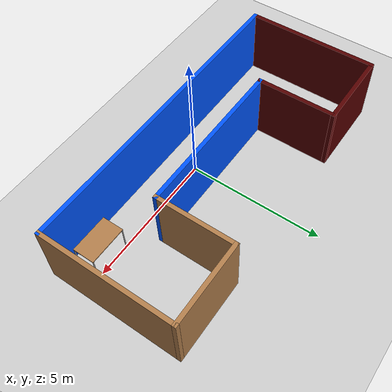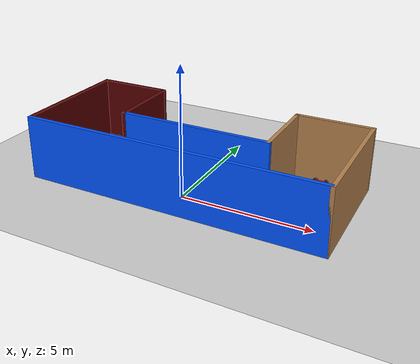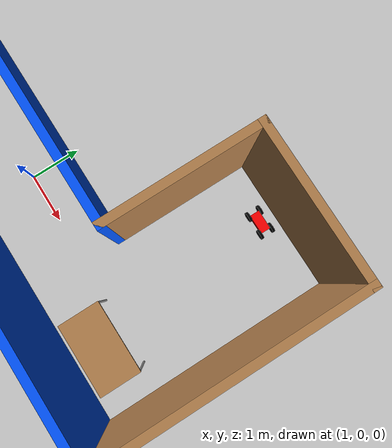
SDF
<sdf version="1.6">
 <world name="default">
  <light name="sun" type="directional">
   <pose>0 0 10 0 -0 0</pose>
   <diffuse>0.8 0.8 0.8 1</diffuse>
   <specular>0.1 0.1 0.1 1</specular>
   <attenuation>
    <range>1000</range>
    <constant>0.9</constant>
    <linear>0.01</linear>
    <quadratic>0.001</quadratic>
   </attenuation>
   <direction>-0.5 0.5 -1</direction>
  </light>
  <model name="ground_plane">
   <static>1</static>
   <link name="link">
    <collision name="collision">
     <geometry><plane><normal>0 0 1</normal><size>100 100</size></plane></geometry>
     <surface><friction><ode><mu>100</mu><mu2>50</mu2></ode></friction></surface>
    </collision>
    <visual name="visual">
     <cast_shadows>0</cast_shadows>
     <geometry><plane><normal>0 0 1</normal><size>100 100</size></plane></geometry>
     <material>
      <script><uri>file://media/materials/scripts/gazebo.material</uri><name>Gazebo/Grey</name></script>
     </material>
    </visual>
   </link>
  </model>
  <gravity>0 0 -9.8</gravity>
  <magnetic_field>6e-06 2.3e-05 -4.2e-05</magnetic_field>
  <atmosphere type="adiabatic"/>
  <physics name="default_physics" default="0" type="ode">
   <max_step_size>0.001</max_step_size>
   <real_time_factor>1</real_time_factor>
   <real_time_update_rate>1000</real_time_update_rate>
  </physics>
  <scene><ambient>0.4 0.4 0.4 1</ambient><background>0.7 0.7 0.7 1</background><shadows>1</shadows></scene>
  <spherical_coordinates>
   <surface_model>EARTH_WGS84</surface_model>
   <latitude_deg>0</latitude_deg>
   <longitude_deg>0</longitude_deg>
   <elevation>0</elevation>
   <heading_deg>0</heading_deg>
  </spherical_coordinates>
  <model name="my_mapping_env">
   <pose>0.02254 1.21778 0 0 -0 0</pose>
   <link name="Wall_15">
    <collision name="Wall_15_Collision">
     <geometry><box><size>5 0.15 2.5</size></box></geometry>
     <pose>0 0 1.25 0 -0 0</pose>
    </collision>
    <visual name="Wall_15_Visual">
     <pose>0 0 1.25 0 -0 0</pose>
     <geometry><box><size>5 0.15 2.5</size></box></geometry>
     <material>
      <script><uri>file://media/materials/scripts/gazebo.material</uri><name>Gazebo/Wood</name></script>
      <ambient>1 1 1 1</ambient>
     </material>
    </visual>
    <pose>5.775 0 0 0 -0 1.5708</pose>
   </link>
   <link name="Wall_16">
    <collision name="Wall_16_Collision">
     <geometry><box><size>3 0.15 2.5</size></box></geometry>
     <pose>0 0 1.25 0 -0 0</pose>
    </collision>
    <visual name="Wall_16_Visual">
     <pose>0 0 1.25 0 -0 0</pose>
     <geometry><box><size>3 0.15 2.5</size></box></geometry>
     <material>
      <script><uri>file://media/materials/scripts/gazebo.material</uri><name>Gazebo/Wood</name></script>
      <ambient>1 1 1 1</ambient>
     </material>
    </visual>
    <pose>4.35 2.425 0 0 -0 3.14159</pose>
   </link>
   <link name="Wall_17">
    <collision name="Wall_17_Collision">
     <geometry><box><size>3 0.15 2.5</size></box></geometry>
     <pose>0 0 1.25 0 -0 0</pose>
    </collision>
    <visual name="Wall_17_Visual">
     <pose>0 0 1.25 0 -0 0</pose>
     <geometry><box><size>3 0.15 2.5</size></box></geometry>
     <material>
      <script><uri>file://media/materials/scripts/gazebo.material</uri><name>Gazebo/Wood</name></script>
      <ambient>1 1 1 1</ambient>
     </material>
    </visual>
    <pose>2.925 1 0 0 0 -1.5708</pose>
   </link>
   <link name="Wall_20">
    <collision name="Wall_20_Collision">
     <geometry><box><size>6 0.15 2.5</size></box></geometry>
     <pose>0 0 1.25 0 -0 0</pose>
    </collision>
    <visual name="Wall_20_Visual">
     <pose>0 0 1.25 0 -0 0</pose>
     <geometry><box><size>6 0.15 2.5</size></box></geometry>
     <material>
      <script><uri>file://media/materials/scripts/gazebo.material</uri><name>Gazebo/Grey</name></script>
      <ambient>0 0.333333 1 1</ambient>
     </material>
    </visual>
    <pose>0 -0.425 0 0 -0 3.14159</pose>
   </link>
   <link name="Wall_21">
    <collision name="Wall_21_Collision">
     <geometry><box><size>3 0.15 2.5</size></box></geometry>
     <pose>0 0 1.25 0 -0 0</pose>
    </collision>
    <visual name="Wall_21_Visual">
     <pose>0 0 1.25 0 -0 0</pose>
     <geometry><box><size>3 0.15 2.5</size></box></geometry>
     <material>
      <script><uri>file://media/materials/scripts/gazebo.material</uri><name>Gazebo/Grey</name></script>
      <ambient>0.333333 0 0 1</ambient>
     </material>
    </visual>
    <pose>-2.925 1 0 0 -0 1.5708</pose>
   </link>
   <link name="Wall_22">
    <collision name="Wall_22_Collision">
     <geometry><box><size>3 0.15 2.5</size></box></geometry>
     <pose>0 0 1.25 0 -0 0</pose>
    </collision>
    <visual name="Wall_22_Visual">
     <pose>0 0 1.25 0 -0 0</pose>
     <geometry><box><size>3 0.15 2.5</size></box></geometry>
     <material>
      <script><uri>file://media/materials/scripts/gazebo.material</uri><name>Gazebo/Grey</name></script>
      <ambient>0.333333 0 0 1</ambient>
     </material>
    </visual>
    <pose>-4.35 2.425 0 0 -0 3.14159</pose>
   </link>
   <link name="Wall_23">
    <collision name="Wall_23_Collision">
     <geometry><box><size>5 0.15 2.5</size></box></geometry>
     <pose>0 0 1.25 0 -0 0</pose>
    </collision>
    <visual name="Wall_23_Visual">
     <pose>0 0 1.25 0 -0 0</pose>
     <geometry><box><size>5 0.15 2.5</size></box></geometry>
     <material>
      <script><uri>file://media/materials/scripts/gazebo.material</uri><name>Gazebo/Grey</name></script>
      <ambient>0.333333 0 0 1</ambient>
     </material>
    </visual>
    <pose>-5.775 0 0 0 0 -1.5708</pose>
   </link>
   <link name="Wall_25">
    <collision name="Wall_25_Collision">
     <geometry><box><size>11.7 0.15 2.5</size></box></geometry>
     <pose>0 0 1.25 0 -0 0</pose>
    </collision>
    <visual name="Wall_25_Visual">
     <pose>0 0 1.25 0 -0 0</pose>
     <geometry><box><size>11.7 0.15 2.5</size></box></geometry>
     <material>
      <script><uri>file://media/materials/scripts/gazebo.material</uri><name>Gazebo/Grey</name></script>
      <ambient>0 0.333333 1 1</ambient>
     </material>
    </visual>
    <pose>0 -2.425 0 0 -0 0</pose>
   </link>
   <static>1</static>
  </model>
  <model name="my_robot">
   <link name="link_0">
    <inertial>
     <mass>1</mass>
     <inertia>
      <ixx>0.166667</ixx>
      <ixy>0</ixy>
      <ixz>0</ixz>
      <iyy>0.166667</iyy>
      <iyz>0</iyz>
      <izz>0.166667</izz>
     </inertia>
    </inertial>
    <visual name="visual">
     <geometry><box><size>0.4 0.2 0.1</size></box></geometry>
     <material>
      <ambient>1 0 0 1</ambient>
      <diffuse>1 0 0 1</diffuse>
      <specular>0.1 0.1 0.1 1</specular>
      <emissive>0 0 0 0</emissive>
     </material>
    </visual>
    <collision name="collision">
     <geometry><box><size>0.4 0.2 0.1</size></box></geometry>
     <surface>
      <friction>
       <ode><mu>1</mu><mu2>1</mu2><fdir1>0 0 0</fdir1><slip1>0</slip1><slip2>0</slip2></ode>
       <torsional>
        <coefficient>1</coefficient>
        <patch_radius>0</patch_radius>
        <surface_radius>0</surface_radius>
        <use_patch_radius>1</use_patch_radius>
        <ode><slip>0</slip></ode>
       </torsional>
      </friction>
      <bounce><restitution_coefficient>0</restitution_coefficient><threshold>1e+06</threshold></bounce>
      <contact>
       <collide_without_contact>0</collide_without_contact>
       <collide_without_contact_bitmask>1</collide_without_contact_bitmask>
       <collide_bitmask>1</collide_bitmask>
       <ode>
        <soft_cfm>0</soft_cfm>
        <soft_erp>0.2</soft_erp>
        <kp>1e+13</kp>
        <kd>1</kd>
        <max_vel>0.01</max_vel>
        <min_depth>0</min_depth>
       </ode>
       <bullet>
        <split_impulse>1</split_impulse>
        <split_impulse_penetration_threshold>-0.01</split_impulse_penetration_threshold>
        <soft_cfm>0</soft_cfm>
        <soft_erp>0.2</soft_erp>
        <kp>1e+13</kp>
        <kd>1</kd>
       </bullet>
      </contact>
     </surface>
    </collision>
   </link>
   <link name="link_2">
    <pose>-0.2 0.125 0 1.5708 -0 0</pose>
    <inertial>
     <mass>1</mass>
     <inertia><ixx>0.145833</ixx><ixy>0</ixy><ixz>0</ixz><iyy>0.145833</iyy><iyz>0</iyz><izz>0.125</izz></inertia>
    </inertial>
    <visual name="visual">
     <geometry><cylinder><radius>0.1</radius><length>0.05</length></cylinder></geometry>
     <material>
      <ambient>0 0 0 0</ambient>
      <diffuse>0 0 0 0</diffuse>
      <specular>0.1 0.1 0.1 1</specular>
      <emissive>0 0 0 0</emissive>
     </material>
    </visual>
    <collision name="collision">
     <geometry><cylinder><radius>0.1</radius><length>0.05</length></cylinder></geometry>
     <surface>
      <friction>
       <ode><mu>1</mu><mu2>1</mu2><fdir1>0 0 0</fdir1><slip1>0</slip1><slip2>0</slip2></ode>
       <torsional>
        <coefficient>1</coefficient>
        <patch_radius>0</patch_radius>
        <surface_radius>0</surface_radius>
        <use_patch_radius>1</use_patch_radius>
        <ode><slip>0</slip></ode>
       </torsional>
      </friction>
      <bounce><restitution_coefficient>0</restitution_coefficient><threshold>1e+06</threshold></bounce>
      <contact>
       <collide_without_contact>0</collide_without_contact>
       <collide_without_contact_bitmask>1</collide_without_contact_bitmask>
       <collide_bitmask>1</collide_bitmask>
       <ode>
        <soft_cfm>0</soft_cfm>
        <soft_erp>0.2</soft_erp>
        <kp>1e+13</kp>
        <kd>1</kd>
        <max_vel>0.01</max_vel>
        <min_depth>0</min_depth>
       </ode>
       <bullet>
        <split_impulse>1</split_impulse>
        <split_impulse_penetration_threshold>-0.01</split_impulse_penetration_threshold>
        <soft_cfm>0</soft_cfm>
        <soft_erp>0.2</soft_erp>
        <kp>1e+13</kp>
        <kd>1</kd>
       </bullet>
      </contact>
     </surface>
    </collision>
   </link>
   <link name="link_2_clone">
    <pose>0.2 0.125 0 1.5708 -0 0</pose>
    <inertial>
     <mass>1</mass>
     <inertia><ixx>0.145833</ixx><ixy>0</ixy><ixz>0</ixz><iyy>0.145833</iyy><iyz>0</iyz><izz>0.125</izz></inertia>
    </inertial>
    <visual name="visual">
     <geometry><cylinder><radius>0.1</radius><length>0.05</length></cylinder></geometry>
     <material>
      <ambient>0 0 0 0</ambient>
      <diffuse>0 0 0 0</diffuse>
      <specular>0.1 0.1 0.1 1</specular>
      <emissive>0 0 0 0</emissive>
     </material>
    </visual>
    <collision name="collision">
     <geometry><cylinder><radius>0.1</radius><length>0.05</length></cylinder></geometry>
     <surface>
      <friction>
       <ode><mu>1</mu><mu2>1</mu2><fdir1>0 0 0</fdir1><slip1>0</slip1><slip2>0</slip2></ode>
       <torsional>
        <coefficient>1</coefficient>
        <patch_radius>0</patch_radius>
        <surface_radius>0</surface_radius>
        <use_patch_radius>1</use_patch_radius>
        <ode><slip>0</slip></ode>
       </torsional>
      </friction>
      <bounce><restitution_coefficient>0</restitution_coefficient><threshold>1e+06</threshold></bounce>
      <contact>
       <collide_without_contact>0</collide_without_contact>
       <collide_without_contact_bitmask>1</collide_without_contact_bitmask>
       <collide_bitmask>1</collide_bitmask>
       <ode>
        <soft_cfm>0</soft_cfm>
        <soft_erp>0.2</soft_erp>
        <kp>1e+13</kp>
        <kd>1</kd>
        <max_vel>0.01</max_vel>
        <min_depth>0</min_depth>
       </ode>
       <bullet>
        <split_impulse>1</split_impulse>
        <split_impulse_penetration_threshold>-0.01</split_impulse_penetration_threshold>
        <soft_cfm>0</soft_cfm>
        <soft_erp>0.2</soft_erp>
        <kp>1e+13</kp>
        <kd>1</kd>
       </bullet>
      </contact>
     </surface>
    </collision>
   </link>
   <link name="link_2_clone_0">
    <pose>0.2 -0.125 0 1.5708 -0 0</pose>
    <inertial>
     <mass>1</mass>
     <inertia><ixx>0.145833</ixx><ixy>0</ixy><ixz>0</ixz><iyy>0.145833</iyy><iyz>0</iyz><izz>0.125</izz></inertia>
    </inertial>
    <visual name="visual">
     <geometry><cylinder><radius>0.1</radius><length>0.05</length></cylinder></geometry>
     <material>
      <ambient>0 0 0 0</ambient>
      <diffuse>0 0 0 0</diffuse>
      <specular>0.1 0.1 0.1 1</specular>
      <emissive>0 0 0 0</emissive>
     </material>
    </visual>
    <collision name="collision">
     <geometry><cylinder><radius>0.1</radius><length>0.05</length></cylinder></geometry>
     <surface>
      <friction>
       <ode><mu>1</mu><mu2>1</mu2><fdir1>0 0 0</fdir1><slip1>0</slip1><slip2>0</slip2></ode>
       <torsional>
        <coefficient>1</coefficient>
        <patch_radius>0</patch_radius>
        <surface_radius>0</surface_radius>
        <use_patch_radius>1</use_patch_radius>
        <ode><slip>0</slip></ode>
       </torsional>
      </friction>
      <bounce><restitution_coefficient>0</restitution_coefficient><threshold>1e+06</threshold></bounce>
      <contact>
       <collide_without_contact>0</collide_without_contact>
       <collide_without_contact_bitmask>1</collide_without_contact_bitmask>
       <collide_bitmask>1</collide_bitmask>
       <ode>
        <soft_cfm>0</soft_cfm>
        <soft_erp>0.2</soft_erp>
        <kp>1e+13</kp>
        <kd>1</kd>
        <max_vel>0.01</max_vel>
        <min_depth>0</min_depth>
       </ode>
       <bullet>
        <split_impulse>1</split_impulse>
        <split_impulse_penetration_threshold>-0.01</split_impulse_penetration_threshold>
        <soft_cfm>0</soft_cfm>
        <soft_erp>0.2</soft_erp>
        <kp>1e+13</kp>
        <kd>1</kd>
       </bullet>
      </contact>
     </surface>
    </collision>
   </link>
   <link name="link_2_clone_0_clone">
    <pose>-0.2 -0.125 0 1.5708 -0 0</pose>
    <inertial>
     <mass>1</mass>
     <inertia><ixx>0.145833</ixx><ixy>0</ixy><ixz>0</ixz><iyy>0.145833</iyy><iyz>0</iyz><izz>0.125</izz></inertia>
    </inertial>
    <visual name="visual">
     <geometry><cylinder><radius>0.1</radius><length>0.05</length></cylinder></geometry>
     <material>
      <ambient>0 0 0 0</ambient>
      <diffuse>0 0 0 0</diffuse>
      <specular>0.1 0.1 0.1 1</specular>
      <emissive>0 0 0 0</emissive>
     </material>
    </visual>
    <collision name="collision">
     <geometry><cylinder><radius>0.1</radius><length>0.05</length></cylinder></geometry>
     <surface>
      <friction>
       <ode><mu>1</mu><mu2>1</mu2><fdir1>0 0 0</fdir1><slip1>0</slip1><slip2>0</slip2></ode>
       <torsional>
        <coefficient>1</coefficient>
        <patch_radius>0</patch_radius>
        <surface_radius>0</surface_radius>
        <use_patch_radius>1</use_patch_radius>
        <ode><slip>0</slip></ode>
       </torsional>
      </friction>
      <bounce><restitution_coefficient>0</restitution_coefficient><threshold>1e+06</threshold></bounce>
      <contact>
       <collide_without_contact>0</collide_without_contact>
       <collide_without_contact_bitmask>1</collide_without_contact_bitmask>
       <collide_bitmask>1</collide_bitmask>
       <ode>
        <soft_cfm>0</soft_cfm>
        <soft_erp>0.2</soft_erp>
        <kp>1e+13</kp>
        <kd>1</kd>
        <max_vel>0.01</max_vel>
        <min_depth>0</min_depth>
       </ode>
       <bullet>
        <split_impulse>1</split_impulse>
        <split_impulse_penetration_threshold>-0.01</split_impulse_penetration_threshold>
        <soft_cfm>0</soft_cfm>
        <soft_erp>0.2</soft_erp>
        <kp>1e+13</kp>
        <kd>1</kd>
       </bullet>
      </contact>
     </surface>
    </collision>
   </link>
   <joint name="link_0_JOINT_10" type="revolute">
    <parent>link_0</parent>
    <child>link_2_clone_0_clone</child>
    <axis>
     <xyz>0 0 1</xyz>
     <use_parent_model_frame>0</use_parent_model_frame>
     <limit>
      <lower>-1.79769e+308</lower>
      <upper>1.79769e+308</upper>
      <effort>-1</effort>
      <velocity>-1</velocity>
     </limit>
     <dynamics>
      <spring_reference>0</spring_reference>
      <spring_stiffness>0</spring_stiffness>
      <damping>0</damping>
     </dynamics>
    </axis>
    <physics>
     <ode><limit><cfm>0</cfm><erp>0.2</erp></limit><suspension><cfm>0</cfm><erp>0.2</erp></suspension></ode>
    </physics>
   </joint>
   <joint name="link_0_JOINT_3" type="revolute">
    <parent>link_0</parent>
    <child>link_2_clone</child>
    <axis>
     <xyz>0 0 1</xyz>
     <use_parent_model_frame>0</use_parent_model_frame>
     <limit>
      <lower>-1.79769e+308</lower>
      <upper>1.79769e+308</upper>
      <effort>-1</effort>
      <velocity>-1</velocity>
     </limit>
     <dynamics>
      <spring_reference>0</spring_reference>
      <spring_stiffness>0</spring_stiffness>
      <damping>0</damping>
     </dynamics>
    </axis>
    <physics>
     <ode><limit><cfm>0</cfm><erp>0.2</erp></limit><suspension><cfm>0</cfm><erp>0.2</erp></suspension></ode>
    </physics>
   </joint>
   <joint name="link_0_JOINT_6" type="revolute">
    <parent>link_0</parent>
    <child>link_2</child>
    <axis>
     <xyz>0 0 1</xyz>
     <use_parent_model_frame>0</use_parent_model_frame>
     <limit>
      <lower>-1.79769e+308</lower>
      <upper>1.79769e+308</upper>
      <effort>-1</effort>
      <velocity>-1</velocity>
     </limit>
     <dynamics>
      <spring_reference>0</spring_reference>
      <spring_stiffness>0</spring_stiffness>
      <damping>0</damping>
     </dynamics>
    </axis>
    <physics>
     <ode><limit><cfm>0</cfm><erp>0.2</erp></limit><suspension><cfm>0</cfm><erp>0.2</erp></suspension></ode>
    </physics>
   </joint>
   <joint name="link_0_JOINT_9" type="revolute">
    <parent>link_0</parent>
    <child>link_2_clone_0</child>
    <axis>
     <xyz>0 0 1</xyz>
     <use_parent_model_frame>0</use_parent_model_frame>
     <limit>
      <lower>-1.79769e+308</lower>
      <upper>1.79769e+308</upper>
      <effort>-1</effort>
      <velocity>-1</velocity>
     </limit>
     <dynamics>
      <spring_reference>0</spring_reference>
      <spring_stiffness>0</spring_stiffness>
      <damping>0</damping>
     </dynamics>
    </axis>
    <physics>
     <ode><limit><cfm>0</cfm><erp>0.2</erp></limit><suspension><cfm>0</cfm><erp>0.2</erp></suspension></ode>
    </physics>
   </joint>
   <static>0</static>
   <pose>-5.19917 3.09917 0.099994 -2e-06 -5e-06 4.8e-05</pose>
  </model>
  <model name="my_robot_0">
   <link name="link_0">
    <inertial>
     <mass>1</mass>
     <inertia>
      <ixx>0.166667</ixx>
      <ixy>0</ixy>
      <ixz>0</ixz>
      <iyy>0.166667</iyy>
      <iyz>0</iyz>
      <izz>0.166667</izz>
     </inertia>
    </inertial>
    <visual name="visual">
     <geometry><box><size>0.4 0.2 0.1</size></box></geometry>
     <material>
      <ambient>1 0 0 1</ambient>
      <diffuse>1 0 0 1</diffuse>
      <specular>0.1 0.1 0.1 1</specular>
      <emissive>0 0 0 0</emissive>
     </material>
    </visual>
    <collision name="collision">
     <geometry><box><size>0.4 0.2 0.1</size></box></geometry>
     <surface>
      <friction>
       <ode><mu>1</mu><mu2>1</mu2><fdir1>0 0 0</fdir1><slip1>0</slip1><slip2>0</slip2></ode>
       <torsional>
        <coefficient>1</coefficient>
        <patch_radius>0</patch_radius>
        <surface_radius>0</surface_radius>
        <use_patch_radius>1</use_patch_radius>
        <ode><slip>0</slip></ode>
       </torsional>
      </friction>
      <bounce><restitution_coefficient>0</restitution_coefficient><threshold>1e+06</threshold></bounce>
      <contact>
       <collide_without_contact>0</collide_without_contact>
       <collide_without_contact_bitmask>1</collide_without_contact_bitmask>
       <collide_bitmask>1</collide_bitmask>
       <ode>
        <soft_cfm>0</soft_cfm>
        <soft_erp>0.2</soft_erp>
        <kp>1e+13</kp>
        <kd>1</kd>
        <max_vel>0.01</max_vel>
        <min_depth>0</min_depth>
       </ode>
       <bullet>
        <split_impulse>1</split_impulse>
        <split_impulse_penetration_threshold>-0.01</split_impulse_penetration_threshold>
        <soft_cfm>0</soft_cfm>
        <soft_erp>0.2</soft_erp>
        <kp>1e+13</kp>
        <kd>1</kd>
       </bullet>
      </contact>
     </surface>
    </collision>
   </link>
   <link name="link_2">
    <pose>-0.2 0.125 0 1.5708 -0 0</pose>
    <inertial>
     <mass>1</mass>
     <inertia><ixx>0.145833</ixx><ixy>0</ixy><ixz>0</ixz><iyy>0.145833</iyy><iyz>0</iyz><izz>0.125</izz></inertia>
    </inertial>
    <visual name="visual">
     <geometry><cylinder><radius>0.1</radius><length>0.05</length></cylinder></geometry>
     <material>
      <ambient>0 0 0 0</ambient>
      <diffuse>0 0 0 0</diffuse>
      <specular>0.1 0.1 0.1 1</specular>
      <emissive>0 0 0 0</emissive>
     </material>
    </visual>
    <collision name="collision">
     <geometry><cylinder><radius>0.1</radius><length>0.05</length></cylinder></geometry>
     <surface>
      <friction>
       <ode><mu>1</mu><mu2>1</mu2><fdir1>0 0 0</fdir1><slip1>0</slip1><slip2>0</slip2></ode>
       <torsional>
        <coefficient>1</coefficient>
        <patch_radius>0</patch_radius>
        <surface_radius>0</surface_radius>
        <use_patch_radius>1</use_patch_radius>
        <ode><slip>0</slip></ode>
       </torsional>
      </friction>
      <bounce><restitution_coefficient>0</restitution_coefficient><threshold>1e+06</threshold></bounce>
      <contact>
       <collide_without_contact>0</collide_without_contact>
       <collide_without_contact_bitmask>1</collide_without_contact_bitmask>
       <collide_bitmask>1</collide_bitmask>
       <ode>
        <soft_cfm>0</soft_cfm>
        <soft_erp>0.2</soft_erp>
        <kp>1e+13</kp>
        <kd>1</kd>
        <max_vel>0.01</max_vel>
        <min_depth>0</min_depth>
       </ode>
       <bullet>
        <split_impulse>1</split_impulse>
        <split_impulse_penetration_threshold>-0.01</split_impulse_penetration_threshold>
        <soft_cfm>0</soft_cfm>
        <soft_erp>0.2</soft_erp>
        <kp>1e+13</kp>
        <kd>1</kd>
       </bullet>
      </contact>
     </surface>
    </collision>
   </link>
   <link name="link_2_clone">
    <pose>0.2 0.125 0 1.5708 -0 0</pose>
    <inertial>
     <mass>1</mass>
     <inertia><ixx>0.145833</ixx><ixy>0</ixy><ixz>0</ixz><iyy>0.145833</iyy><iyz>0</iyz><izz>0.125</izz></inertia>
    </inertial>
    <visual name="visual">
     <geometry><cylinder><radius>0.1</radius><length>0.05</length></cylinder></geometry>
     <material>
      <ambient>0 0 0 0</ambient>
      <diffuse>0 0 0 0</diffuse>
      <specular>0.1 0.1 0.1 1</specular>
      <emissive>0 0 0 0</emissive>
     </material>
    </visual>
    <collision name="collision">
     <geometry><cylinder><radius>0.1</radius><length>0.05</length></cylinder></geometry>
     <surface>
      <friction>
       <ode><mu>1</mu><mu2>1</mu2><fdir1>0 0 0</fdir1><slip1>0</slip1><slip2>0</slip2></ode>
       <torsional>
        <coefficient>1</coefficient>
        <patch_radius>0</patch_radius>
        <surface_radius>0</surface_radius>
        <use_patch_radius>1</use_patch_radius>
        <ode><slip>0</slip></ode>
       </torsional>
      </friction>
      <bounce><restitution_coefficient>0</restitution_coefficient><threshold>1e+06</threshold></bounce>
      <contact>
       <collide_without_contact>0</collide_without_contact>
       <collide_without_contact_bitmask>1</collide_without_contact_bitmask>
       <collide_bitmask>1</collide_bitmask>
       <ode>
        <soft_cfm>0</soft_cfm>
        <soft_erp>0.2</soft_erp>
        <kp>1e+13</kp>
        <kd>1</kd>
        <max_vel>0.01</max_vel>
        <min_depth>0</min_depth>
       </ode>
       <bullet>
        <split_impulse>1</split_impulse>
        <split_impulse_penetration_threshold>-0.01</split_impulse_penetration_threshold>
        <soft_cfm>0</soft_cfm>
        <soft_erp>0.2</soft_erp>
        <kp>1e+13</kp>
        <kd>1</kd>
       </bullet>
      </contact>
     </surface>
    </collision>
   </link>
   <link name="link_2_clone_0">
    <pose>0.2 -0.125 0 1.5708 -0 0</pose>
    <inertial>
     <mass>1</mass>
     <inertia><ixx>0.145833</ixx><ixy>0</ixy><ixz>0</ixz><iyy>0.145833</iyy><iyz>0</iyz><izz>0.125</izz></inertia>
    </inertial>
    <visual name="visual">
     <geometry><cylinder><radius>0.1</radius><length>0.05</length></cylinder></geometry>
     <material>
      <ambient>0 0 0 0</ambient>
      <diffuse>0 0 0 0</diffuse>
      <specular>0.1 0.1 0.1 1</specular>
      <emissive>0 0 0 0</emissive>
     </material>
    </visual>
    <collision name="collision">
     <geometry><cylinder><radius>0.1</radius><length>0.05</length></cylinder></geometry>
     <surface>
      <friction>
       <ode><mu>1</mu><mu2>1</mu2><fdir1>0 0 0</fdir1><slip1>0</slip1><slip2>0</slip2></ode>
       <torsional>
        <coefficient>1</coefficient>
        <patch_radius>0</patch_radius>
        <surface_radius>0</surface_radius>
        <use_patch_radius>1</use_patch_radius>
        <ode><slip>0</slip></ode>
       </torsional>
      </friction>
      <bounce><restitution_coefficient>0</restitution_coefficient><threshold>1e+06</threshold></bounce>
      <contact>
       <collide_without_contact>0</collide_without_contact>
       <collide_without_contact_bitmask>1</collide_without_contact_bitmask>
       <collide_bitmask>1</collide_bitmask>
       <ode>
        <soft_cfm>0</soft_cfm>
        <soft_erp>0.2</soft_erp>
        <kp>1e+13</kp>
        <kd>1</kd>
        <max_vel>0.01</max_vel>
        <min_depth>0</min_depth>
       </ode>
       <bullet>
        <split_impulse>1</split_impulse>
        <split_impulse_penetration_threshold>-0.01</split_impulse_penetration_threshold>
        <soft_cfm>0</soft_cfm>
        <soft_erp>0.2</soft_erp>
        <kp>1e+13</kp>
        <kd>1</kd>
       </bullet>
      </contact>
     </surface>
    </collision>
   </link>
   <link name="link_2_clone_0_clone">
    <pose>-0.2 -0.125 0 1.5708 -0 0</pose>
    <inertial>
     <mass>1</mass>
     <inertia><ixx>0.145833</ixx><ixy>0</ixy><ixz>0</ixz><iyy>0.145833</iyy><iyz>0</iyz><izz>0.125</izz></inertia>
    </inertial>
    <visual name="visual">
     <geometry><cylinder><radius>0.1</radius><length>0.05</length></cylinder></geometry>
     <material>
      <ambient>0 0 0 0</ambient>
      <diffuse>0 0 0 0</diffuse>
      <specular>0.1 0.1 0.1 1</specular>
      <emissive>0 0 0 0</emissive>
     </material>
    </visual>
    <collision name="collision">
     <geometry><cylinder><radius>0.1</radius><length>0.05</length></cylinder></geometry>
     <surface>
      <friction>
       <ode><mu>1</mu><mu2>1</mu2><fdir1>0 0 0</fdir1><slip1>0</slip1><slip2>0</slip2></ode>
       <torsional>
        <coefficient>1</coefficient>
        <patch_radius>0</patch_radius>
        <surface_radius>0</surface_radius>
        <use_patch_radius>1</use_patch_radius>
        <ode><slip>0</slip></ode>
       </torsional>
      </friction>
      <bounce><restitution_coefficient>0</restitution_coefficient><threshold>1e+06</threshold></bounce>
      <contact>
       <collide_without_contact>0</collide_without_contact>
       <collide_without_contact_bitmask>1</collide_without_contact_bitmask>
       <collide_bitmask>1</collide_bitmask>
       <ode>
        <soft_cfm>0</soft_cfm>
        <soft_erp>0.2</soft_erp>
        <kp>1e+13</kp>
        <kd>1</kd>
        <max_vel>0.01</max_vel>
        <min_depth>0</min_depth>
       </ode>
       <bullet>
        <split_impulse>1</split_impulse>
        <split_impulse_penetration_threshold>-0.01</split_impulse_penetration_threshold>
        <soft_cfm>0</soft_cfm>
        <soft_erp>0.2</soft_erp>
        <kp>1e+13</kp>
        <kd>1</kd>
       </bullet>
      </contact>
     </surface>
    </collision>
   </link>
   <joint name="link_0_JOINT_10" type="revolute">
    <parent>link_0</parent>
    <child>link_2_clone_0_clone</child>
    <axis>
     <xyz>0 0 1</xyz>
     <use_parent_model_frame>0</use_parent_model_frame>
     <limit>
      <lower>-1.79769e+308</lower>
      <upper>1.79769e+308</upper>
      <effort>-1</effort>
      <velocity>-1</velocity>
     </limit>
     <dynamics>
      <spring_reference>0</spring_reference>
      <spring_stiffness>0</spring_stiffness>
      <damping>0</damping>
     </dynamics>
    </axis>
    <physics>
     <ode><limit><cfm>0</cfm><erp>0.2</erp></limit><suspension><cfm>0</cfm><erp>0.2</erp></suspension></ode>
    </physics>
   </joint>
   <joint name="link_0_JOINT_3" type="revolute">
    <parent>link_0</parent>
    <child>link_2_clone</child>
    <axis>
     <xyz>0 0 1</xyz>
     <use_parent_model_frame>0</use_parent_model_frame>
     <limit>
      <lower>-1.79769e+308</lower>
      <upper>1.79769e+308</upper>
      <effort>-1</effort>
      <velocity>-1</velocity>
     </limit>
     <dynamics>
      <spring_reference>0</spring_reference>
      <spring_stiffness>0</spring_stiffness>
      <damping>0</damping>
     </dynamics>
    </axis>
    <physics>
     <ode><limit><cfm>0</cfm><erp>0.2</erp></limit><suspension><cfm>0</cfm><erp>0.2</erp></suspension></ode>
    </physics>
   </joint>
   <joint name="link_0_JOINT_6" type="revolute">
    <parent>link_0</parent>
    <child>link_2</child>
    <axis>
     <xyz>0 0 1</xyz>
     <use_parent_model_frame>0</use_parent_model_frame>
     <limit>
      <lower>-1.79769e+308</lower>
      <upper>1.79769e+308</upper>
      <effort>-1</effort>
      <velocity>-1</velocity>
     </limit>
     <dynamics>
      <spring_reference>0</spring_reference>
      <spring_stiffness>0</spring_stiffness>
      <damping>0</damping>
     </dynamics>
    </axis>
    <physics>
     <ode><limit><cfm>0</cfm><erp>0.2</erp></limit><suspension><cfm>0</cfm><erp>0.2</erp></suspension></ode>
    </physics>
   </joint>
   <joint name="link_0_JOINT_9" type="revolute">
    <parent>link_0</parent>
    <child>link_2_clone_0</child>
    <axis>
     <xyz>0 0 1</xyz>
     <use_parent_model_frame>0</use_parent_model_frame>
     <limit>
      <lower>-1.79769e+308</lower>
      <upper>1.79769e+308</upper>
      <effort>-1</effort>
      <velocity>-1</velocity>
     </limit>
     <dynamics>
      <spring_reference>0</spring_reference>
      <spring_stiffness>0</spring_stiffness>
      <damping>0</damping>
     </dynamics>
    </axis>
    <physics>
     <ode><limit><cfm>0</cfm><erp>0.2</erp></limit><suspension><cfm>0</cfm><erp>0.2</erp></suspension></ode>
    </physics>
   </joint>
   <static>0</static>
   <pose>4.13085 3.23827 0.1 -2e-06 -0 4.4e-05</pose>
  </model>
  <model name="table">
   <static>0</static>
   <link name="link">
    <collision name="surface">
     <pose>0 0 1 0 -0 0</pose>
     <geometry><box><size>1.5 0.8 0.03</size></box></geometry>
     <surface><friction><ode><mu>0.6</mu><mu2>0.6</mu2></ode></friction></surface>
    </collision>
    <visual name="visual1">
     <pose>0 0 1 0 -0 0</pose>
     <geometry><box><size>1.4 0.8 0.04</size></box></geometry>
     <material>
      <script><uri>file://media/materials/scripts/gazebo.material</uri><name>Gazebo/Wood</name></script>
     </material>
    </visual>
    <collision name="front_left_leg">
     <pose>0.68 0.38 0.5 0 -0 0</pose>
     <geometry><cylinder><radius>0.02</radius><length>1</length></cylinder></geometry>
    </collision>
    <visual name="front_left_leg">
     <pose>0.68 0.38 0.5 0 -0 0</pose>
     <geometry><cylinder><radius>0.02</radius><length>1</length></cylinder></geometry>
     <material>
      <script><uri>file://media/materials/scripts/gazebo.material</uri><name>Gazebo/Grey</name></script>
     </material>
    </visual>
    <collision name="front_right_leg">
     <pose>0.68 -0.38 0.5 0 -0 0</pose>
     <geometry><cylinder><radius>0.02</radius><length>1</length></cylinder></geometry>
    </collision>
    <visual name="front_right_leg">
     <pose>0.68 -0.38 0.5 0 -0 0</pose>
     <geometry><cylinder><radius>0.02</radius><length>1</length></cylinder></geometry>
     <material>
      <script><uri>file://media/materials/scripts/gazebo.material</uri><name>Gazebo/Grey</name></script>
     </material>
    </visual>
    <collision name="back_right_leg">
     <pose>-0.68 -0.38 0.5 0 -0 0</pose>
     <geometry><cylinder><radius>0.02</radius><length>1</length></cylinder></geometry>
    </collision>
    <visual name="back_right_leg">
     <pose>-0.68 -0.38 0.5 0 -0 0</pose>
     <geometry><cylinder><radius>0.02</radius><length>1</length></cylinder></geometry>
     <material>
      <script><uri>file://media/materials/scripts/gazebo.material</uri><name>Gazebo/Grey</name></script>
     </material>
    </visual>
    <collision name="back_left_leg">
     <pose>-0.68 0.38 0.5 0 -0 0</pose>
     <geometry><cylinder><radius>0.02</radius><length>1</length></cylinder></geometry>
    </collision>
    <visual name="back_left_leg">
     <pose>-0.68 0.38 0.5 0 -0 0</pose>
     <geometry><cylinder><radius>0.02</radius><length>1</length></cylinder></geometry>
     <material>
      <script><uri>file://media/materials/scripts/gazebo.material</uri><name>Gazebo/Grey</name></script>
     </material>
    </visual>
    <inertial>
     <inertia><ixx>1</ixx><ixy>0</ixy><ixz>0</ixz><iyy>1</iyy><iyz>0</iyz><izz>1</izz></inertia>
     <mass>1</mass>
    </inertial>
   </link>
   <pose>4.48744 -0.424162 -2e-06 0 -0 0</pose>
  </model>
 </world>
</sdf>
